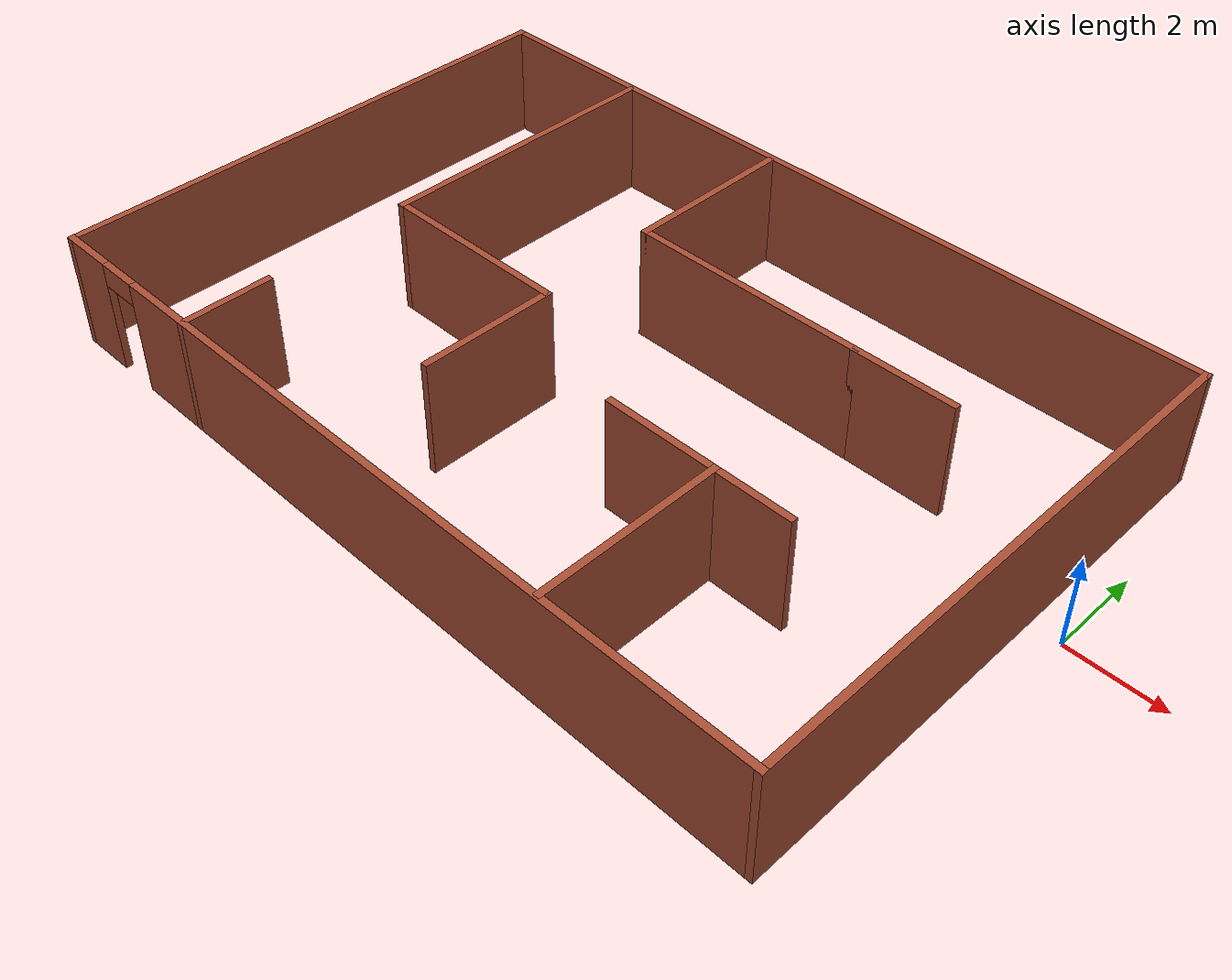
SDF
<?xml version='1.0'?>
<sdf version='1.7'>
  <model name='my_house'>
    <pose>-9.06364 -1.02365 0 0 -0 0</pose>
    <link name='Wall_10'>
      <collision name='Wall_10_Collision'>
        <geometry>
          <box>
            <size>11.75 0.15 2.5</size>
          </box>
        </geometry>
        <pose>0 0 1.25 0 -0 0</pose>
      </collision>
      <visual name='Wall_10_Visual'>
        <pose>0 0 1.25 0 -0 0</pose>
        <geometry>
          <box>
            <size>11.75 0.15 2.5</size>
          </box>
        </geometry>
        <material>
          <script>
            <uri>file://media/materials/scripts/gazebo.material</uri>
            <name>Gazebo/Bricks</name>
          </script>
          <ambient>1 1 1 1</ambient>
        </material>
        <meta>
          <layer>0</layer>
        </meta>
      </visual>
      <pose>-8.98864 9e-06 0 0 -0 -1.5708</pose>
    </link>
    <link name='Wall_12'>
      <collision name='Wall_12_Collision'>
        <geometry>
          <box>
            <size>6.5 0.15 2.5</size>
          </box>
        </geometry>
        <pose>0 0 1.25 0 -0 0</pose>
      </collision>
      <visual name='Wall_12_Visual'>
        <pose>0 0 1.25 0 -0 0</pose>
        <geometry>
          <box>
            <size>6.5 0.15 2.5</size>
          </box>
        </geometry>
        <material>
          <script>
            <uri>file://media/materials/scripts/gazebo.material</uri>
            <name>Gazebo/Bricks</name>
          </script>
          <ambient>1 1 1 1</ambient>
        </material>
        <meta>
          <layer>0</layer>
        </meta>
      </visual>
      <pose>-5.41983 2.56292 0 0 -0 -1.5708</pose>
    </link>
    <link name='Wall_14'>
      <collision name='Wall_14_Collision'>
        <geometry>
          <box>
            <size>2 0.15 2.5</size>
          </box>
        </geometry>
        <pose>0 0 1.25 0 -0 0</pose>
      </collision>
      <visual name='Wall_14_Visual'>
        <pose>0 0 1.25 0 -0 0</pose>
        <geometry>
          <box>
            <size>2 0.15 2.5</size>
          </box>
        </geometry>
        <material>
          <script>
            <uri>file://media/materials/scripts/gazebo.material</uri>
            <name>Gazebo/Bricks</name>
          </script>
          <ambient>1 1 1 1</ambient>
        </material>
        <meta>
          <layer>0</layer>
        </meta>
      </visual>
      <pose>-5.28026 -4.87501 0 0 -0 1.5708</pose>
    </link>
    <link name='Wall_16'>
      <collision name='Wall_16_Collision'>
        <geometry>
          <box>
            <size>4.25 0.15 2.5</size>
          </box>
        </geometry>
        <pose>0 0 1.25 0 -0 0</pose>
      </collision>
      <visual name='Wall_16_Visual'>
        <pose>0 0 1.25 0 -0 0</pose>
        <geometry>
          <box>
            <size>4.25 0.15 2.5</size>
          </box>
        </geometry>
        <material>
          <script>
            <uri>file://media/materials/scripts/gazebo.material</uri>
            <name>Gazebo/Bricks</name>
          </script>
          <ambient>1 1 1 1</ambient>
        </material>
        <meta>
          <layer>0</layer>
        </meta>
      </visual>
      <pose>-3.36984 -0.612078 0 0 -0 0</pose>
    </link>
    <link name='Wall_17'>
      <collision name='Wall_17_Collision'>
        <geometry>
          <box>
            <size>3 0.15 2.5</size>
          </box>
        </geometry>
        <pose>0 0 1.25 0 -0 0</pose>
      </collision>
      <visual name='Wall_17_Visual'>
        <pose>0 0 1.25 0 -0 0</pose>
        <geometry>
          <box>
            <size>3 0.15 2.5</size>
          </box>
        </geometry>
        <material>
          <script>
            <uri>file://media/materials/scripts/gazebo.material</uri>
            <name>Gazebo/Bricks</name>
          </script>
          <ambient>1 1 1 1</ambient>
        </material>
        <meta>
          <layer>0</layer>
        </meta>
      </visual>
      <pose>-1.31984 -2.03708 0 0 -0 -1.5708</pose>
    </link>
    <link name='Wall_19'>
      <collision name='Wall_19_Collision'>
        <geometry>
          <box>
            <size>3.75 0.15 2.5</size>
          </box>
        </geometry>
        <pose>0 0 1.25 0 -0 0</pose>
      </collision>
      <visual name='Wall_19_Visual'>
        <pose>0 0 1.25 0 -0 0</pose>
        <geometry>
          <box>
            <size>3.75 0.15 2.5</size>
          </box>
        </geometry>
        <material>
          <script>
            <uri>file://media/materials/scripts/gazebo.material</uri>
            <name>Gazebo/Bricks</name>
          </script>
          <ambient>1 1 1 1</ambient>
        </material>
        <meta>
          <layer>0</layer>
        </meta>
      </visual>
      <pose>-1.41878 3.8914 0 0 -0 -1.5708</pose>
    </link>
    <link name='Wall_20'>
      <collision name='Wall_20_Collision'>
        <geometry>
          <box>
            <size>5.25 0.15 2.5</size>
          </box>
        </geometry>
        <pose>0 0 1.25 0 -0 0</pose>
      </collision>
      <visual name='Wall_20_Visual'>
        <pose>0 0 1.25 0 -0 0</pose>
        <geometry>
          <box>
            <size>5.25 0.15 2.5</size>
          </box>
        </geometry>
        <material>
          <script>
            <uri>file://media/materials/scripts/gazebo.material</uri>
            <name>Gazebo/Bricks</name>
          </script>
          <ambient>1 1 1 1</ambient>
        </material>
        <meta>
          <layer>0</layer>
        </meta>
      </visual>
      <pose>1.13122 2.0914 0 0 -0 0</pose>
    </link>
    <link name='Wall_21'>
      <collision name='Wall_21_Collision'>
        <geometry>
          <box>
            <size>2.25 0.15 2.5</size>
          </box>
        </geometry>
        <pose>0 0 1.25 0 -0 0</pose>
      </collision>
      <visual name='Wall_21_Visual'>
        <pose>0 0 1.25 0 -0 0</pose>
        <geometry>
          <box>
            <size>2.25 0.15 2.5</size>
          </box>
        </geometry>
        <material>
          <script>
            <uri>file://media/materials/scripts/gazebo.material</uri>
            <name>Gazebo/Bricks</name>
          </script>
          <ambient>1 1 1 1</ambient>
        </material>
        <meta>
          <layer>0</layer>
        </meta>
      </visual>
      <pose>4.73122 2.0914 0 0 -0 0</pose>
    </link>
    <link name='Wall_23'>
      <collision name='Wall_23_Collision'>
        <geometry>
          <box>
            <size>4 0.15 2.5</size>
          </box>
        </geometry>
        <pose>0 0 1.25 0 -0 0</pose>
      </collision>
      <visual name='Wall_23_Visual'>
        <pose>0 0 1.25 0 -0 0</pose>
        <geometry>
          <box>
            <size>4 0.15 2.5</size>
          </box>
        </geometry>
        <material>
          <script>
            <uri>file://media/materials/scripts/gazebo.material</uri>
            <name>Gazebo/Bricks</name>
          </script>
          <ambient>1 1 1 1</ambient>
        </material>
        <meta>
          <layer>0</layer>
        </meta>
      </visual>
      <pose>3.97799 -3.82849 0 0 -0 1.5708</pose>
    </link>
    <link name='Wall_24'>
      <collision name='Wall_24_Collision'>
        <geometry>
          <box>
            <size>2.5 0.15 2.5</size>
          </box>
        </geometry>
        <pose>0 0 1.25 0 -0 0</pose>
      </collision>
      <visual name='Wall_24_Visual'>
        <pose>0 0 1.25 0 -0 0</pose>
        <geometry>
          <box>
            <size>2.5 0.15 2.5</size>
          </box>
        </geometry>
        <material>
          <script>
            <uri>file://media/materials/scripts/gazebo.material</uri>
            <name>Gazebo/Bricks</name>
          </script>
          <ambient>1 1 1 1</ambient>
        </material>
        <meta>
          <layer>0</layer>
        </meta>
      </visual>
      <pose>2.803 -1.90349 0 0 -0 3.14159</pose>
    </link>
    <link name='Wall_26'>
      <collision name='Wall_26_Collision'>
        <geometry>
          <box>
            <size>1.75 0.15 2.5</size>
          </box>
        </geometry>
        <pose>0 0 1.25 0 -0 0</pose>
      </collision>
      <visual name='Wall_26_Visual'>
        <pose>0 0 1.25 0 -0 0</pose>
        <geometry>
          <box>
            <size>1.75 0.15 2.5</size>
          </box>
        </geometry>
        <material>
          <script>
            <uri>file://media/materials/scripts/gazebo.material</uri>
            <name>Gazebo/Bricks</name>
          </script>
          <ambient>1 1 1 1</ambient>
        </material>
        <meta>
          <layer>0</layer>
        </meta>
      </visual>
      <pose>4.77799 -1.90349 0 0 -0 0</pose>
    </link>
    <link name='Wall_7'>
      <pose>-0.313637 -5.79999 0 0 -0 0</pose>
      <visual name='Wall_7_Visual_0'>
        <pose>-8.1301 0 1.25 0 -0 0</pose>
        <geometry>
          <box>
            <size>1.2398 0.15 2.5</size>
          </box>
        </geometry>
        <material>
          <script>
            <uri>file://media/materials/scripts/gazebo.material</uri>
            <name>Gazebo/Bricks</name>
          </script>
          <ambient>1 1 1 1</ambient>
        </material>
        <meta>
          <layer>0</layer>
        </meta>
      </visual>
      <collision name='Wall_7_Collision_0'>
        <geometry>
          <box>
            <size>1.2398 0.15 2.5</size>
          </box>
        </geometry>
        <pose>-8.1301 0 1.25 0 -0 0</pose>
      </collision>
      <visual name='Wall_7_Visual_1'>
        <pose>1.0699 0 1.25 0 -0 0</pose>
        <geometry>
          <box>
            <size>15.3602 0.15 2.5</size>
          </box>
        </geometry>
        <material>
          <script>
            <uri>file://media/materials/scripts/gazebo.material</uri>
            <name>Gazebo/Bricks</name>
          </script>
          <ambient>1 1 1 1</ambient>
        </material>
        <meta>
          <layer>0</layer>
        </meta>
      </visual>
      <collision name='Wall_7_Collision_1'>
        <geometry>
          <box>
            <size>15.3602 0.15 2.5</size>
          </box>
        </geometry>
        <pose>1.0699 0 1.25 0 -0 0</pose>
      </collision>
      <visual name='Wall_7_Visual_2'>
        <pose>-7.0602 0 2.25 0 -0 0</pose>
        <geometry>
          <box>
            <size>0.9 0.15 0.5</size>
          </box>
        </geometry>
        <material>
          <script>
            <uri>file://media/materials/scripts/gazebo.material</uri>
            <name>Gazebo/Bricks</name>
          </script>
          <ambient>1 1 1 1</ambient>
        </material>
        <meta>
          <layer>0</layer>
        </meta>
      </visual>
      <collision name='Wall_7_Collision_2'>
        <geometry>
          <box>
            <size>0.9 0.15 0.5</size>
          </box>
        </geometry>
        <pose>-7.0602 0 2.25 0 -0 0</pose>
      </collision>
    </link>
    <link name='Wall_8'>
      <collision name='Wall_8_Collision'>
        <geometry>
          <box>
            <size>11.75 0.15 2.5</size>
          </box>
        </geometry>
        <pose>0 0 1.25 0 -0 0</pose>
      </collision>
      <visual name='Wall_8_Visual'>
        <pose>0 0 1.25 0 -0 0</pose>
        <geometry>
          <box>
            <size>11.75 0.15 2.5</size>
          </box>
        </geometry>
        <material>
          <script>
            <uri>file://media/materials/scripts/gazebo.material</uri>
            <name>Gazebo/Bricks</name>
          </script>
          <ambient>1 1 1 1</ambient>
        </material>
        <meta>
          <layer>0</layer>
        </meta>
      </visual>
      <pose>8.36136 9e-06 0 0 -0 1.5708</pose>
    </link>
    <link name='Wall_9'>
      <collision name='Wall_9_Collision'>
        <geometry>
          <box>
            <size>17.5 0.15 2.5</size>
          </box>
        </geometry>
        <pose>0 0 1.25 0 -0 0</pose>
      </collision>
      <visual name='Wall_9_Visual'>
        <pose>0 0 1.25 0 -0 0</pose>
        <geometry>
          <box>
            <size>17.5 0.15 2.5</size>
          </box>
        </geometry>
        <material>
          <script>
            <uri>file://media/materials/scripts/gazebo.material</uri>
            <name>Gazebo/Bricks</name>
          </script>
          <ambient>1 1 1 1</ambient>
        </material>
        <meta>
          <layer>0</layer>
        </meta>
      </visual>
      <pose>-0.313637 5.80001 0 0 -0 3.14159</pose>
    </link>
    <static>1</static>
  </model>
</sdf>
